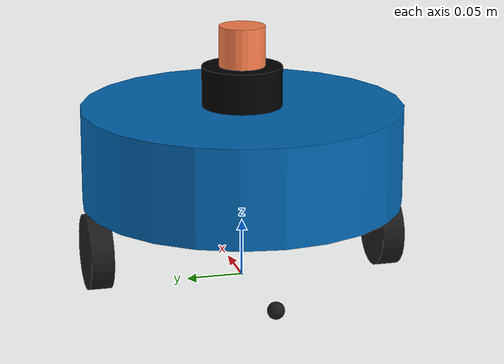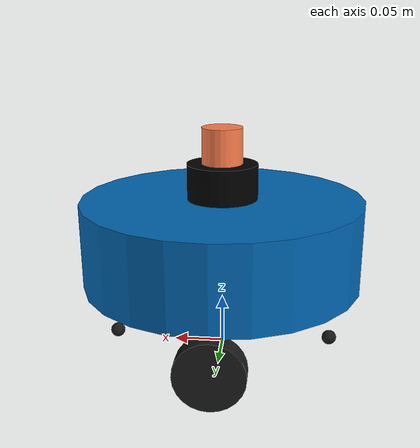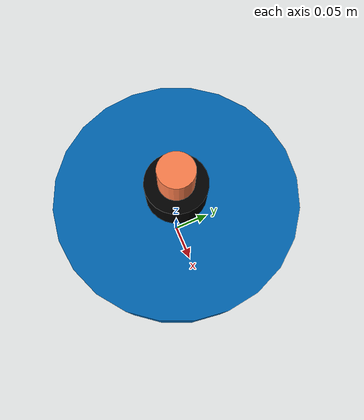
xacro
<robot name="mycar" xmlns:xacro="http://wiki.ros.org/xacro">

    <!--包含惯性矩阵文件-->
    <xacro:include filename="head.xacro" />

    <!--包含底盘、雷达外形的xacro文件-->
    <xacro:include filename="car_base.xacro" />
    <xacro:include filename="car_laser.xacro" />

    <!--运动控制-->
    <xacro:include filename="gazebo/move.xacro" />

    <!--RGBD相机-->
    <xacro:include filename="gazebo/d_camera.xacro" />

    <!--雷达传感器-->

    <!--imu-->

</robot>

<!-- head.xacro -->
<robot name="base" xmlns:xacro="http://wiki.ros.org/xacro">
    <!-- Macro for inertia matrix -->
    <xacro:macro name="sphere_inertial_matrix" params="m r">
        <inertial>
            <mass value="${m}" />
            <inertia ixx="${2*m*r*r/5}" ixy="0" ixz="0"
                iyy="${2*m*r*r/5}" iyz="0"
                izz="${2*m*r*r/5}" />
        </inertial>
    </xacro:macro>

    <xacro:macro name="cylinder_inertial_matrix" params="m r h">
        <inertial>
            <mass value="${m}" />
            <inertia ixx="${m*(3*r*r+h*h)/12}" ixy = "0" ixz = "0"
                iyy="${m*(3*r*r+h*h)/12}" iyz = "0"
                izz="${m*r*r/2}" />
        </inertial>
    </xacro:macro>

    <xacro:macro name="Box_inertial_matrix" params="m l w h">
       <inertial>
               <mass value="${m}" />
               <inertia ixx="${m*(h*h + l*l)/12}" ixy = "0" ixz = "0"
                   iyy="${m*(w*w + l*l)/12}" iyz= "0"
                   izz="${m*(w*w + h*h)/12}" />
       </inertial>
   </xacro:macro>
</robot>

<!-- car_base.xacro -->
<robot name="mycar" xmlns:xacro="http://wiki.ros.org/xacro">
    <!-- 飞马旅圆形两轮差速AGV -->

    <!--1.添加base_footprint-->
    <xacro:property name="footprint_radius" value="0.001" />

    <link name="base_footprint">
        <visual>
            <geometry>
                <sphere radius="${footprint_radius}" />
            </geometry>
        </visual>
    </link>

    <!--2.添加底盘base_link-->
    <!--形状：圆柱体 半径：0.09m; 高度：0.85m; 质量50kg; 离地距离：0.07m-->
    <!--跟实际AGV略有不同：高度减了一些，补偿到lidi，防止轮胎和地盘重合。-->
    <xacro:property name="base_radius" value="0.14" />
    <xacro:property name="base_mass" value="20" />  <!-- 太轻会导致转弯抖动 -->
    <xacro:property name="base_length" value="0.085" />
    <xacro:property name="lidi" value="0.07" />
    <xacro:property name="base_joint_z" value="${base_length/2+lidi}" />

    <!--2.1 link-->
    <link name="base_link">
        <visual>
            <geometry>
                <cylinder radius="${base_radius}" length="${base_length}" />
            </geometry>

            <origin xyz="0 0 0" rpy="0 0 0" />

            <material name="baselink_color">
                <color rgba="0.0 0.4 0.7 1" />
            </material>
        </visual>

        <collision>
            <geometry>
                <cylinder radius="${base_radius}" length="${base_length}" />
            </geometry>

            <origin xyz="0 0 0" rpy="0 0 0" />
        </collision>
        <!--调用惯性矩阵函数,包含在head.xacro中-->
        <xacro:cylinder_inertial_matrix m="${base_mass}" r="${base_radius}" h="${base_length}" />
    </link>

    <!--gazebo需要单独设置颜色-->
    <gazebo reference="base_link">
        <material>
            Gazebo/Blue
        </material>
    </gazebo>

    <!--2.2 joint-->
    <joint name="link2footprint" type="fixed">
        <parent link="base_footprint" />
        <child link="base_link" />
        <origin xyz="0 0 ${base_joint_z}" rpy="0 0 0" />
    </joint>

    <!--3.添加左右驱动轮-->
    <!--形状：圆柱 半径：0.033m 长度：0.023m; 质量6kg(质量不要改，会影响PID控制性能，现在是K=0.6的状态)-->
    <xacro:property name="wheel_radius" value="0.033" />
    <xacro:property name="wheel_length" value="0.02" /> <!-- 实际0.023,搞小一点，防止原地掉头摩擦抖动 -->
    <xacro:property name="wheel_mass" value="6" />
    <xacro:property name="PI" value="3.14159265359" />
    <!--y轴上的偏移量=车体半径-车轮长度/2  -->
    <xacro:property name="wheel_joint_y" value="${base_radius-wheel_length/2}" />
    <xacro:property name="wheel_joint_z" value="${-1*(base_joint_z - wheel_radius)}" />
    <!--
        wheel_name:left right
        flag:left==>1 right==>-1
    -->
    <xacro:macro name="wheel_func" params="wheel_name flag">
        <!--3.1 link-->
        <link name="${wheel_name}_wheel">
            <visual>
                <geometry>
                    <cylinder radius="${wheel_radius}" length="${wheel_length}" />
                </geometry>
                <!--  车轮需要竖起来，即沿着x轴旋转PI/2  -->
                <origin xyz="0 0 0" rpy="${PI/2} 0 0" />

                <material name="wheel_color">
                    <color rgba="0.1 0.1 0.1 1" />
                </material>
            </visual>
            <collision>
                <geometry>
                    <cylinder radius="${wheel_radius}" length="${wheel_length}" />
                </geometry>

                <origin xyz="0 0 0" rpy="${PI/2} 0 0" />
            </collision>

            <!--调用惯性矩阵函数-->
            <xacro:cylinder_inertial_matrix m="${wheel_mass}" r="${wheel_radius}" h="${wheel_length}" />
        </link>

        <!--gazebo需要单独设置颜色-->
        <gazebo reference="${wheel_name}_wheel">
            <material>Gazebo/Black</material>
        </gazebo>

        <!--3.2 joint-->
        <joint name="${wheel_name}2link" type="continuous">
            <parent link="base_link" />
            <child link="${wheel_name}_wheel" />
            <origin xyz="0 ${wheel_joint_y*flag} ${wheel_joint_z}" rpy="0 0 0" />
            <!--轮子沿着y轴转-->
            <axis xyz="0 1 0" />
        </joint>

    </xacro:macro>
    <!--调用宏，生成左右两侧驱动轮-->
    <xacro:wheel_func wheel_name="left" flag="1" />
    <xacro:wheel_func wheel_name="right" flag="-1" />

    <!--4.添加万向轮-->
    <!--形状：球 半径：0.0075m-->
    <xacro:property name="small_wheel_radius" value="0.0075" />
    <xacro:property name="small_wheel_mass" value="0.25" />
    <xacro:property name="small_joint_x" value="${0.8*base_radius}" />
    <xacro:property name="small_joint_z" value="${-1*(base_joint_z-small_wheel_radius)}" />

    <xacro:macro name="small_wheel_func" params="small_wheel_name flag">
        <!--4.1 link-->
        <link name="${small_wheel_name}_wheel">
            <visual>
                <geometry>
                    <sphere radius="${small_wheel_radius}" />
                </geometry>

                <origin xyz="0 0 0" rpy="0 0 0" />

                <material name="wheel_color">
                    <color rgba="0.1 0.1 0.1 1" />
                </material>
            </visual>

            <collision>
                <geometry>
                    <sphere radius="${small_wheel_radius}" />
                </geometry>

                <origin xyz="0 0 0" rpy="0 0 0" />
            </collision>

            <!--调用惯性矩阵函数-->
            <xacro:sphere_inertial_matrix m="${small_wheel_mass}" r="${small_wheel_radius}"/>
        </link>

        <!--gazebo需要单独设置颜色-->
        <gazebo reference="${small_wheel_name}_wheel">
            <material>Gazebo/Black</material>
        </gazebo>

        <!--4.2 joint-->
        <joint name="${small_wheel_name}2link" type="continuous">
            <parent link="base_link" />
            <child link="${small_wheel_name}_wheel" />
            <origin xyz="${small_joint_x*flag} 0 ${small_joint_z}" rpy="0 0 0" />
            <!--轮子沿着y轴转-->
            <axis xyz="0 1 0" />
        </joint>
    </xacro:macro>

    <xacro:small_wheel_func small_wheel_name="front" flag="1" />
    <xacro:small_wheel_func small_wheel_name="back" flag="-1" />

</robot>

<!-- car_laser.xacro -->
<robot name="mycar" xmlns:xacro="http://wiki.ros.org/xacro">
    <!--添加雷达-->
    <xacro:property name="support_radius" value="0.035" />
    <xacro:property name="support_length" value="0.035" />
    <xacro:property name="support_mass" value="0.02" />
    <!--support_joint_z=车体高度/2+支架高度/2-->
    <xacro:property name="support_joint_z" value="${base_length/2+support_length/2}" />

    <xacro:property name="laser_radius" value="0.02" />
    <xacro:property name="laser_length" value="0.035" />
    <xacro:property name="laser_mass" value="0.02" />
    <!--laser_joint_z=支架高度/2+雷达高度/2-->
    <xacro:property name="laser_joint_z" value="${support_length/2+laser_length/2}" />

    <!--1.支架-->
    <link name="support">
        <visual>
            <geometry>
                <cylinder radius="${support_radius}" length="${support_length}" />
            </geometry>
            <material name="support_color">
                <color rgba="0 0 0 1" />
            </material>
        </visual>
        <collision>
            <geometry>
                <cylinder radius="${support_radius}" length="${support_length}" />
            </geometry>
        </collision>
        <!--调用惯性矩阵函数-->
        <xacro:cylinder_inertial_matrix m="${support_mass}" r="${support_radius}" h="${support_length}" />
    </link>

    <!--gazebo需要单独设置颜色-->
    <gazebo reference="support">
        <material>Gazebo/Black</material>
    </gazebo>

    <joint name="support2base" type="fixed">
        <parent link="base_link" />
        <child link="support" />
        <origin xyz="0 0 ${support_joint_z}" rpy="0 0 0" />
    </joint>

    <!--2.雷达发射位置: 可以比实际可视化位置高一些（扫腰，不扫腿） -->
    <link name="laser">
        <visual>
            <geometry>
                <sphere radius="${footprint_radius}" />
            </geometry>
            <material name="laser_color">
                <color rgba="1 0.5 0.3 1" />
            </material>
        </visual>
    </link>
    <joint name="laser2basefootprint" type="fixed">
        <parent link="base_footprint" />
        <child link="laser" />
        <origin xyz="0 0 0.12" rpy="0 0 0" />
    </joint>

    <!--3.雷达圆柱体可视化位置-->
    <link name="laser_link">
        <visual>
            <geometry>
                <cylinder radius="${laser_radius}" length="${laser_length}" />
            </geometry>
            <material name="laser_link_color">
                <color rgba="1 0.5 0.3 1" />
            </material>
        </visual>
        <collision>
            <geometry>
                <cylinder radius="${laser_radius}" length="${laser_length}" />
            </geometry>
        </collision>
        <!--调用惯性矩阵函数-->
        <xacro:cylinder_inertial_matrix m="${laser_mass}" r="${laser_radius}" h="${laser_length}" />
    </link>

    <!--gazebo需要单独设置颜色-->
    <gazebo reference="laser_link">
        <material>Gazebo/Orange</material>
    </gazebo>

    <joint name="laser_link2support" type="fixed">
        <parent link="support" />
        <child link="laser_link" />
        <origin xyz="0 0 ${laser_joint_z}" rpy="0 0 0" />
    </joint>

</robot>
